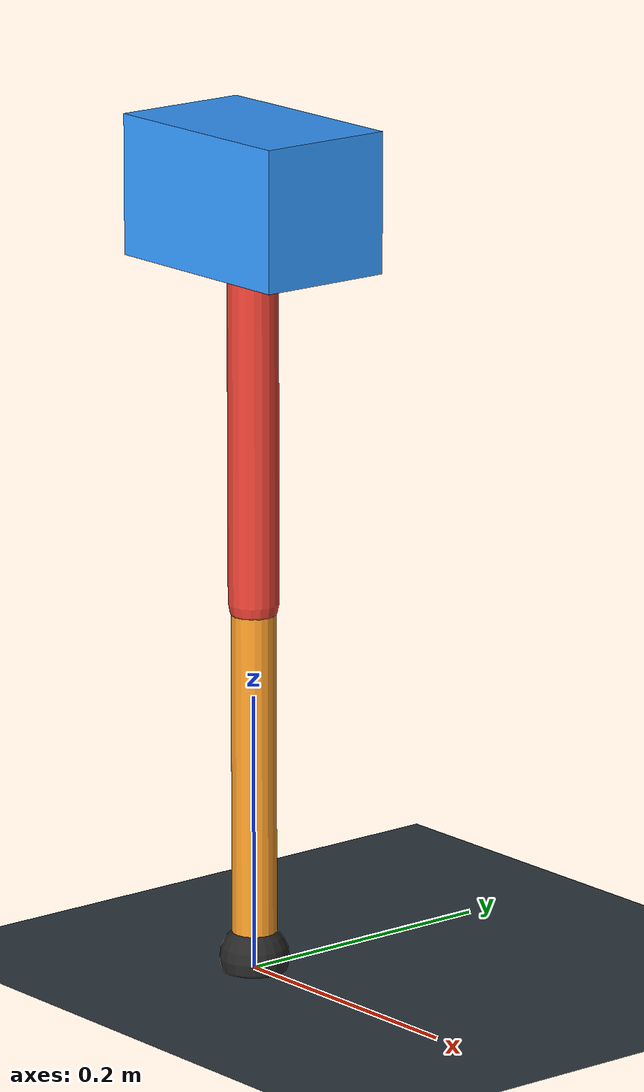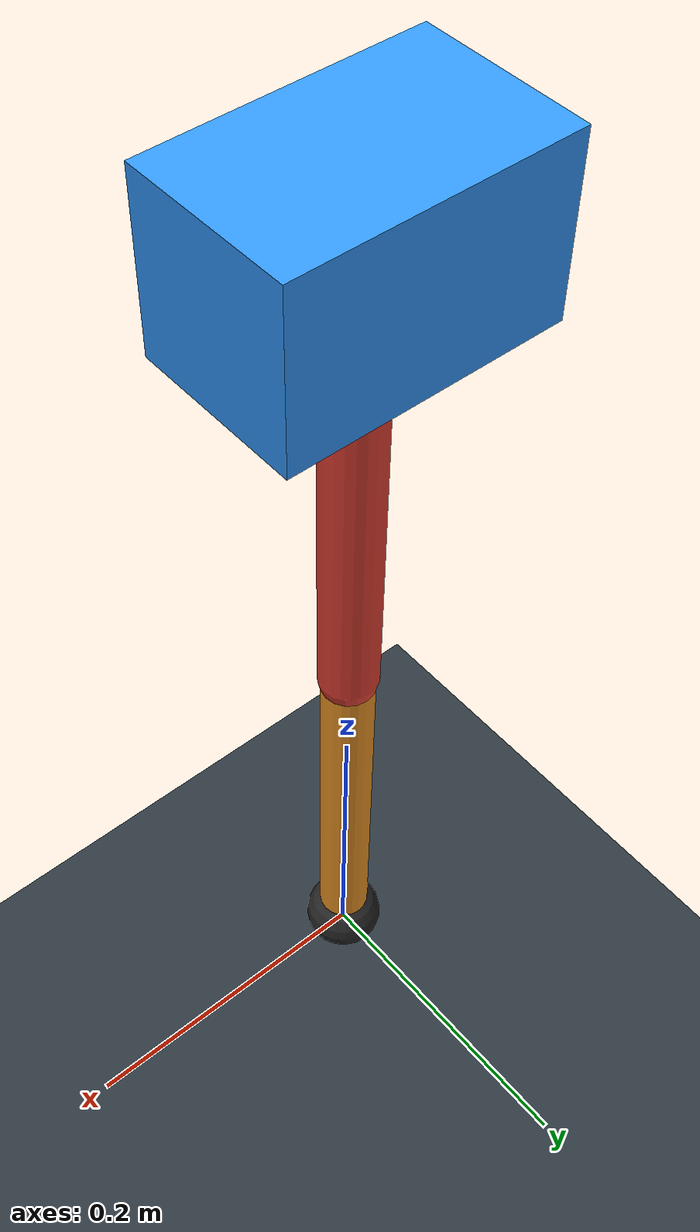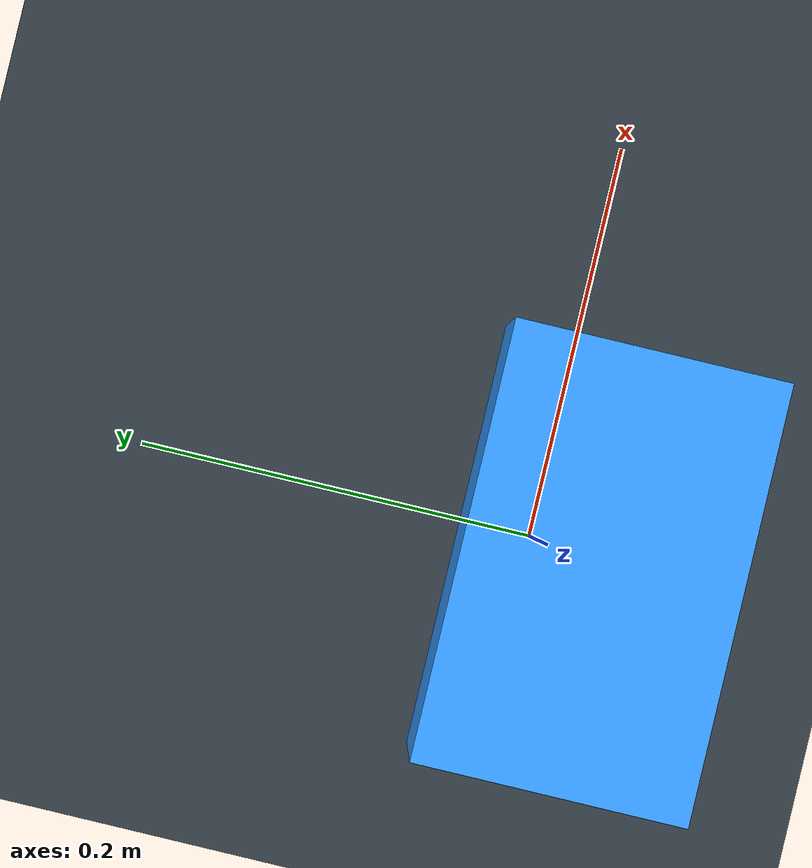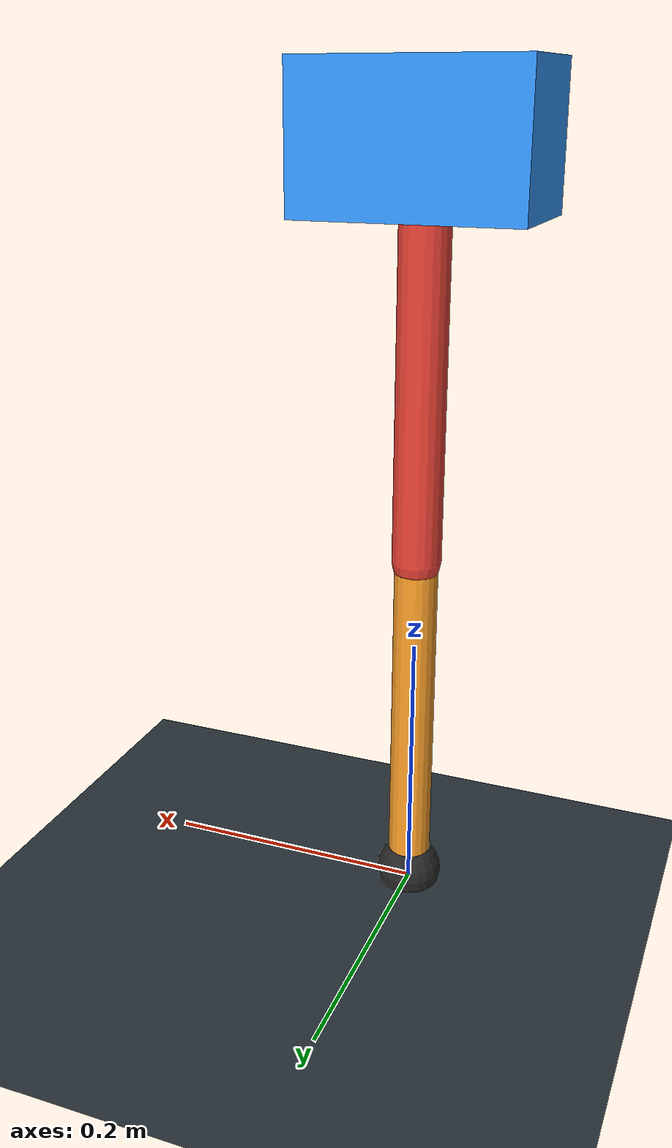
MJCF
<mujoco model="single_axis_two_bar">
  <compiler angle="radian" inertiafromgeom="true"/>
  <option timestep="0.001" integrator="implicitfast" gravity="0 0 -9.81"/>
  <default>
    <joint damping="0.08"/>
    <geom friction="1.2 0.01 0.0001" condim="3"/>
  </default>
  <worldbody>
    <geom name="floor" type="plane" size="5 5 0.1" rgba="0.18 0.22 0.25 1"/>
    <body name="carriage" pos="0 0 0.5617861530925703">
      <joint name="pole_slide" type="slide" axis="0 0 1"/>
      <geom name="payload" type="box" size="0.08 0.05 0.05" mass="2.970507069841609" rgba="0.2 0.6 1 1"/>
      <body name="thigh" pos="0 0 0">
        <joint name="hip" type="hinge" axis="0 1 0"/>
        <geom name="thigh_link" type="capsule" fromto="0 0 0 0 0 -0.29357311121424956" size="0.018" mass="0.2091747209665597" rgba="0.9 0.25 0.2 1"/>
        <body name="shank" pos="0 0 -0.29357311121424956">
          <joint name="knee" type="hinge" axis="0 1 0"/>
          <geom name="shank_link" type="capsule" fromto="0 0 0 0 0 -0.25981467547912185" size="0.016" mass="0.18512138942690973" rgba="0.95 0.6 0.15 1"/>
          <geom name="foot" type="sphere" pos="0 0 -0.25981467547912185" size="0.025" mass="0.03" rgba="0.15 0.15 0.15 1"/>
          <site name="toe" pos="0 0 -0.25981467547912185" size="0.008"/>
        </body>
      </body>
    </body>
  </worldbody>
  <actuator>
    <motor name="hip_motor" joint="hip" ctrlrange="-21.511180757545965 21.511180757545965"/>
    <motor name="knee_motor" joint="knee" ctrlrange="-148.71730329869936 148.71730329869936"/>
  </actuator>
</mujoco>
